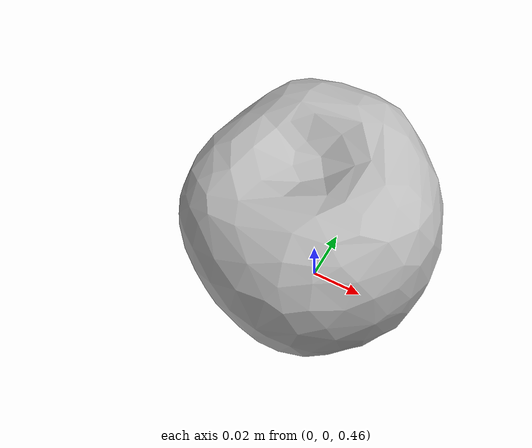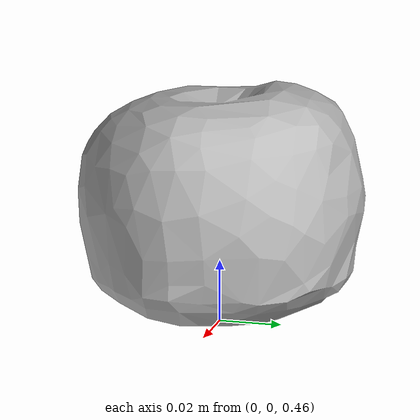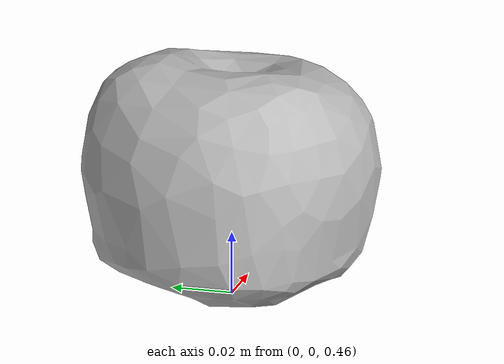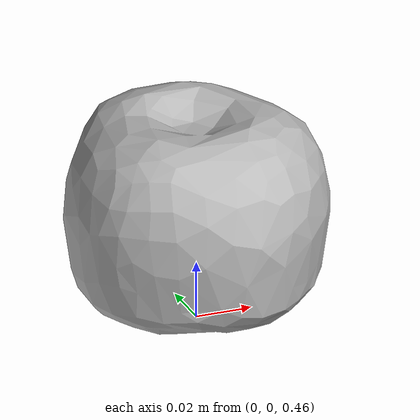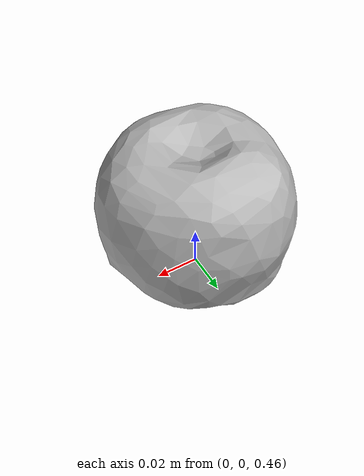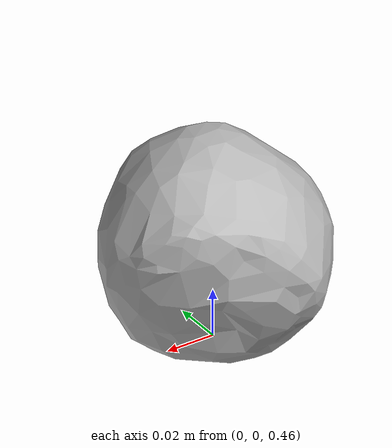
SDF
<?xml version="1.0"?>
<sdf version='1.10'>
    <model name="apple">
        <pose> 0 0 0.5 0 0 0</pose>
        <static> false </static>
        <link name="apple_link">
            <collision name="apple_collision">
                <geometry>
                    <mesh>
                        <uri>model://meshes/apple.dae</uri>
                        <scale>1 1 1</scale>
                    </mesh>
                </geometry>
            </collision>

            <visual name="apple_visual">
                <geometry>
                    <mesh>
                        <uri>model://meshes/apple.dae</uri>
                        <scale>1 1 1</scale>
                    </mesh>
                </geometry>
            </visual>

            <inertial>
                <mass> 0.125 </mass>
                <pose>0 0 0.045 0 0 0</pose>
                <inertia>
                    <ixx>0.0000984</ixx>
                    <ixy>0.0</ixy>
                    <ixz>0.0</ixz>
                    <iyy>0.0000984</iyy>
                    <iyz>0.0</iyz>
                    <izz>0.0000984</izz>
                </inertia>
            </inertial>
        </link>
    </model>
</sdf>
